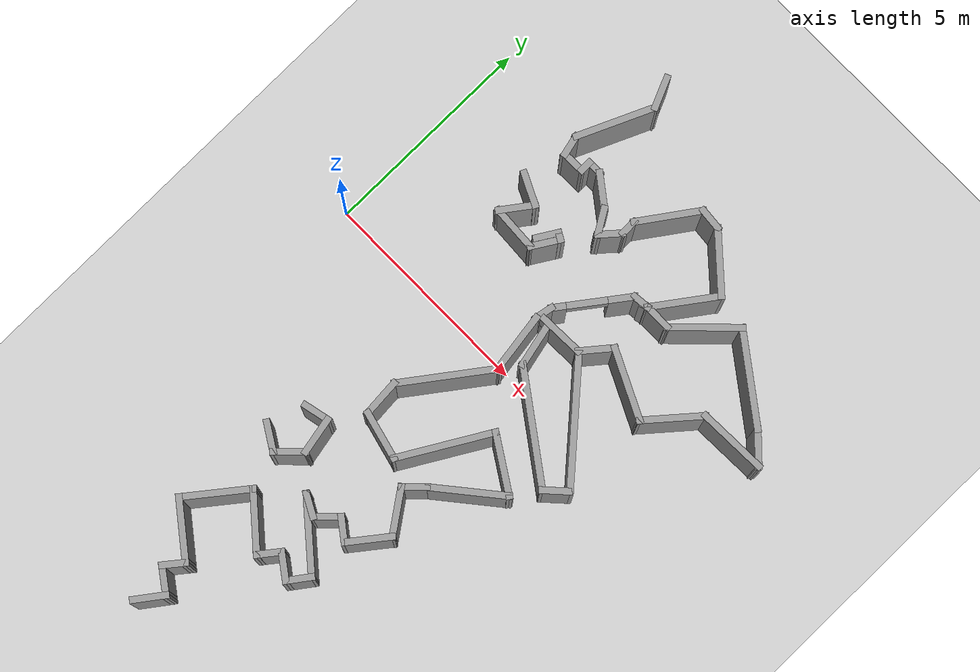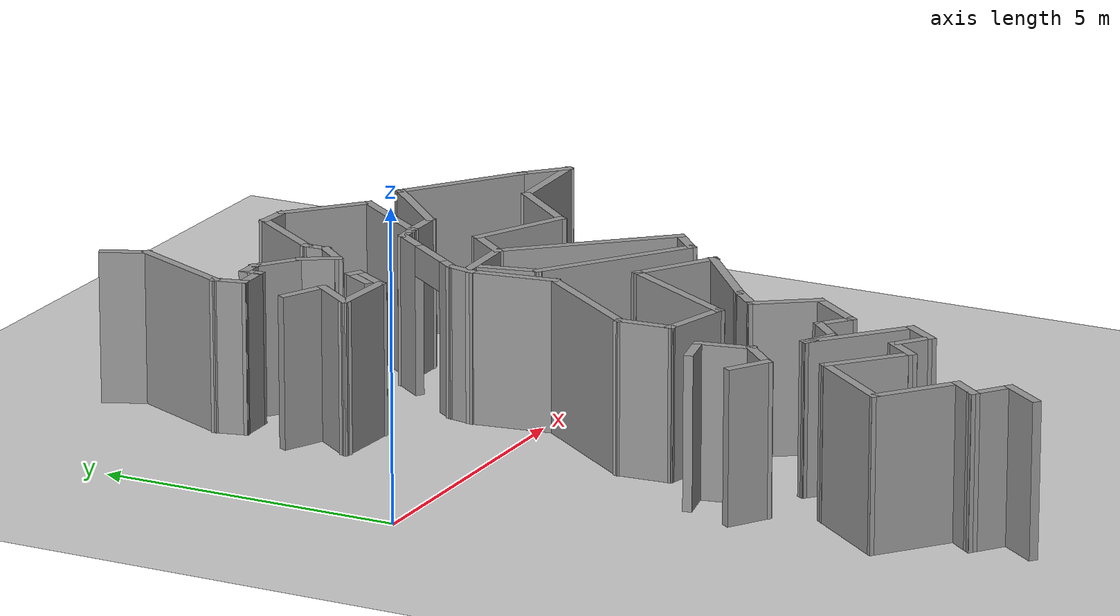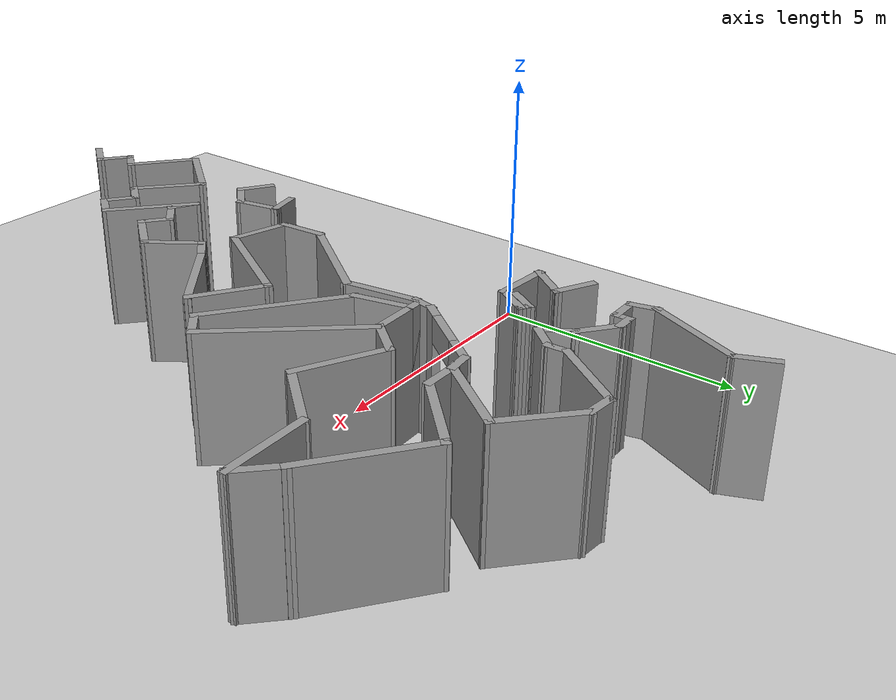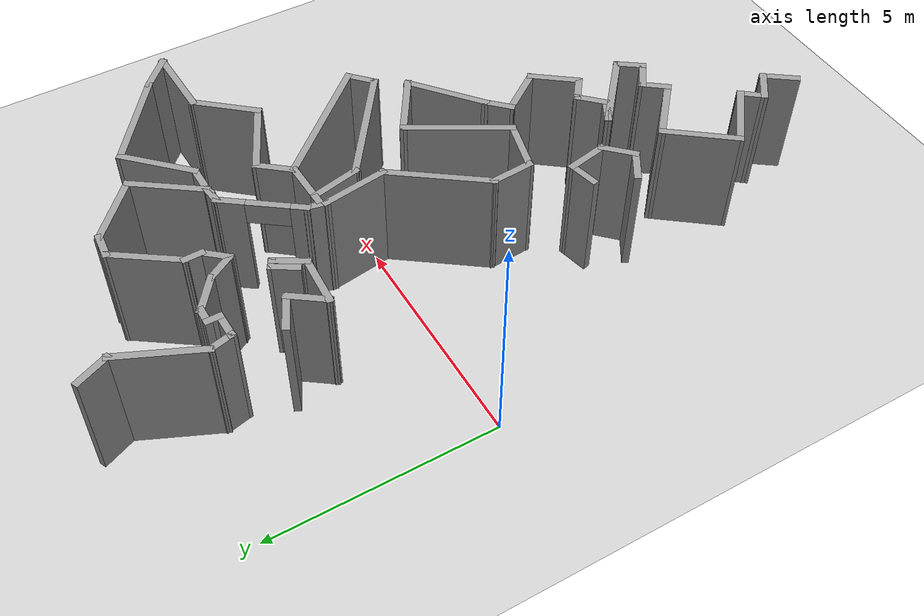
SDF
<sdf version="1.7">
 <world name="default">
  <model name="ground_plane">
   <static>1</static>
   <link name="link">
    <collision name="collision">
     <geometry><plane><normal>0 0 1</normal><size>100 100</size></plane></geometry>
     <surface><friction><ode><mu>100</mu><mu2>50</mu2></ode></friction></surface>
    </collision>
    <visual name="visual">
     <cast_shadows>0</cast_shadows>
     <geometry><plane><normal>0 0 1</normal><size>100 100</size></plane></geometry>
     <material>
      <script><uri>file://media/materials/scripts/gazebo.material</uri><name>Gazebo/Grey</name></script>
     </material>
    </visual>
   </link>
  </model>
  <model name="c82_house_gz">
   <pose>0.081452 -0.44571 0 0 -0 0</pose>
   <link name="Wall_11">
    <collision name="Wall_11_Collision">
     <geometry><box><size>1.18708 0.15 2.5</size></box></geometry>
     <pose>0 0 1.25 0 -0 0</pose>
    </collision>
    <visual name="Wall_11_Visual">
     <pose>0 0 1.25 0 -0 0</pose>
     <geometry><box><size>1.18708 0.15 2.5</size></box></geometry>
     <material>
      <script><uri>file://media/materials/scripts/gazebo.material</uri><name>Gazebo/Grey</name></script>
      <ambient>1 1 1 1</ambient>
     </material>
     <meta><layer>0</layer></meta>
    </visual>
    <pose>2.9473 2.59405 0 0 -0 -0.060532</pose>
   </link>
   <link name="Wall_12">
    <collision name="Wall_12_Collision">
     <geometry><box><size>0.811734 0.15 2.5</size></box></geometry>
     <pose>0 0 1.25 0 -0 0</pose>
    </collision>
    <visual name="Wall_12_Visual">
     <pose>0 0 1.25 0 -0 0</pose>
     <geometry><box><size>0.811734 0.15 2.5</size></box></geometry>
     <material>
      <script><uri>file://media/materials/scripts/gazebo.material</uri><name>Gazebo/Grey</name></script>
      <ambient>1 1 1 1</ambient>
     </material>
     <meta><layer>0</layer></meta>
    </visual>
    <pose>3.63743 2.84501 0 0 -0 1.02225</pose>
   </link>
   <link name="Wall_120">
    <collision name="Wall_120_Collision">
     <geometry><box><size>0.505966 0.15 2.5</size></box></geometry>
     <pose>0 0 1.25 0 -0 0</pose>
    </collision>
    <visual name="Wall_120_Visual">
     <pose>0 0 1.25 0 -0 0</pose>
     <geometry><box><size>0.505966 0.15 2.5</size></box></geometry>
     <material>
      <script><uri>file://media/materials/scripts/gazebo.material</uri><name>Gazebo/Grey</name></script>
      <ambient>1 1 1 1</ambient>
     </material>
     <meta><layer>0</layer></meta>
    </visual>
    <pose>5.9717 3.41398 0 0 -0 0.104884</pose>
   </link>
   <link name="Wall_122">
    <collision name="Wall_122_Collision">
     <geometry><box><size>0.75 0.15 2.5</size></box></geometry>
     <pose>0 0 1.25 0 -0 0</pose>
    </collision>
    <visual name="Wall_122_Visual">
     <pose>0 0 1.25 0 -0 0</pose>
     <geometry><box><size>0.75 0.15 2.5</size></box></geometry>
     <material>
      <script><uri>file://media/materials/scripts/gazebo.material</uri><name>Gazebo/Grey</name></script>
      <ambient>1 1 1 1</ambient>
     </material>
     <meta><layer>0</layer></meta>
    </visual>
    <pose>6.4487 3.43261 0 0 -0 0</pose>
   </link>
   <link name="Wall_123">
    <collision name="Wall_123_Collision">
     <geometry><box><size>1.75 0.15 2.5</size></box></geometry>
     <pose>0 0 1.25 0 -0 0</pose>
    </collision>
    <visual name="Wall_123_Visual">
     <pose>0 0 1.25 0 -0 0</pose>
     <geometry><box><size>1.75 0.15 2.5</size></box></geometry>
     <material>
      <script><uri>file://media/materials/scripts/gazebo.material</uri><name>Gazebo/Grey</name></script>
      <ambient>1 1 1 1</ambient>
     </material>
     <meta><layer>0</layer></meta>
    </visual>
    <pose>7.31439 3.9983 0 0 -0 0.785398</pose>
   </link>
   <link name="Wall_124">
    <collision name="Wall_124_Collision">
     <geometry><box><size>2.34246 0.15 2.5</size></box></geometry>
     <pose>0 0 1.25 0 -0 0</pose>
    </collision>
    <visual name="Wall_124_Visual">
     <pose>0 0 1.25 0 -0 0</pose>
     <geometry><box><size>2.34246 0.15 2.5</size></box></geometry>
     <material>
      <script><uri>file://media/materials/scripts/gazebo.material</uri><name>Gazebo/Grey</name></script>
      <ambient>1 1 1 1</ambient>
     </material>
     <meta><layer>0</layer></meta>
    </visual>
    <pose>8.76248 3.91353 0 0 -0 -0.635221</pose>
   </link>
   <link name="Wall_125">
    <collision name="Wall_125_Collision">
     <geometry><box><size>0.939842 0.15 2.5</size></box></geometry>
     <pose>0 0 1.25 0 -0 0</pose>
    </collision>
    <visual name="Wall_125_Visual">
     <pose>0 0 1.25 0 -0 0</pose>
     <geometry><box><size>0.939842 0.15 2.5</size></box></geometry>
     <material>
      <script><uri>file://media/materials/scripts/gazebo.material</uri><name>Gazebo/Grey</name></script>
      <ambient>1 1 1 1</ambient>
     </material>
     <meta><layer>0</layer></meta>
    </visual>
    <pose>9.93178 2.99168 0 0 -0 -0.757628</pose>
   </link>
   <link name="Wall_126">
    <collision name="Wall_126_Collision">
     <geometry><box><size>1.70149 0.15 2.5</size></box></geometry>
     <pose>0 0 1.25 0 -0 0</pose>
    </collision>
    <visual name="Wall_126_Visual">
     <pose>0 0 1.25 0 -0 0</pose>
     <geometry><box><size>1.70149 0.15 2.5</size></box></geometry>
     <material>
      <script><uri>file://media/materials/scripts/gazebo.material</uri><name>Gazebo/Grey</name></script>
      <ambient>1 1 1 1</ambient>
     </material>
     <meta><layer>0</layer></meta>
    </visual>
    <pose>9.44327 2.69703 0 0 -0 -3.1116</pose>
   </link>
   <link name="Wall_127">
    <collision name="Wall_127_Collision">
     <geometry><box><size>1.5579 0.15 2.5</size></box></geometry>
     <pose>0 0 1.25 0 -0 0</pose>
    </collision>
    <visual name="Wall_127_Visual">
     <pose>0 0 1.25 0 -0 0</pose>
     <geometry><box><size>1.5579 0.15 2.5</size></box></geometry>
     <material>
      <script><uri>file://media/materials/scripts/gazebo.material</uri><name>Gazebo/Grey</name></script>
      <ambient>1 1 1 1</ambient>
     </material>
     <meta><layer>0</layer></meta>
    </visual>
    <pose>8.21039 2.13875 0 0 -0 -2.27823</pose>
   </link>
   <link name="Wall_128">
    <collision name="Wall_128_Collision">
     <geometry><box><size>1.78688 0.15 2.5</size></box></geometry>
     <pose>0 0 1.25 0 -0 0</pose>
    </collision>
    <visual name="Wall_128_Visual">
     <pose>0 0 1.25 0 -0 0</pose>
     <geometry><box><size>1.78688 0.15 2.5</size></box></geometry>
     <material>
      <script><uri>file://media/materials/scripts/gazebo.material</uri><name>Gazebo/Grey</name></script>
      <ambient>1 1 1 1</ambient>
     </material>
     <meta><layer>0</layer></meta>
    </visual>
    <pose>7.01628 1.9604 0 0 -0 2.69066</pose>
   </link>
   <link name="Wall_129">
    <collision name="Wall_129_Collision">
     <geometry><box><size>0.932346 0.15 2.5</size></box></geometry>
     <pose>0 0 1.25 0 -0 0</pose>
    </collision>
    <visual name="Wall_129_Visual">
     <pose>0 0 1.25 0 -0 0</pose>
     <geometry><box><size>0.932346 0.15 2.5</size></box></geometry>
     <material>
      <script><uri>file://media/materials/scripts/gazebo.material</uri><name>Gazebo/Grey</name></script>
      <ambient>1 1 1 1</ambient>
     </material>
     <meta><layer>0</layer></meta>
    </visual>
    <pose>6.03152 2.01468 0 0 -0 -2.25792</pose>
   </link>
   <link name="Wall_130">
    <pose>5.27938 1.69677 0 0 -0 -3.11083</pose>
    <visual name="Wall_130_Visual_0">
     <pose>0 0 1.25 0 -0 0</pose>
     <geometry><box><size>1.1585 0.15 2.5</size></box></geometry>
     <material>
      <script><uri>file://media/materials/scripts/gazebo.material</uri><name>Gazebo/Grey</name></script>
      <ambient>1 1 1 1</ambient>
     </material>
     <meta><layer>0</layer></meta>
    </visual>
    <collision name="Wall_130_Collision_0">
     <geometry><box><size>1.1585 0.15 2.5</size></box></geometry>
     <pose>0 0 1.25 0 -0 0</pose>
    </collision>
    <visual name="Wall_130_Visual_1">
     <pose>0.446838 0 1.25 0 -0 0</pose>
     <geometry><box><size>0.264818 0.15 2.5</size></box></geometry>
     <material>
      <script><uri>file://media/materials/scripts/gazebo.material</uri><name>Gazebo/Grey</name></script>
      <ambient>1 1 1 1</ambient>
     </material>
     <meta><layer>0</layer></meta>
    </visual>
    <collision name="Wall_130_Collision_1">
     <geometry><box><size>0.264818 0.15 2.5</size></box></geometry>
     <pose>0.446838 0 1.25 0 -0 0</pose>
    </collision>
   </link>
   <link name="Wall_139">
    <collision name="Wall_139_Collision">
     <geometry><box><size>1.17812 0.15 2.5</size></box></geometry>
     <pose>0 0 1.25 0 -0 0</pose>
    </collision>
    <visual name="Wall_139_Visual">
     <pose>0 0 1.25 0 -0 0</pose>
     <geometry><box><size>1.17812 0.15 2.5</size></box></geometry>
     <material>
      <script><uri>file://media/materials/scripts/gazebo.material</uri><name>Gazebo/Grey</name></script>
      <ambient>1 1 1 1</ambient>
     </material>
     <meta><layer>0</layer></meta>
    </visual>
    <pose>5.0439 1.17068 0 0 -0 -1.34464</pose>
   </link>
   <link name="Wall_14">
    <collision name="Wall_14_Collision">
     <geometry><box><size>0.301971 0.15 2.5</size></box></geometry>
     <pose>0 0 1.25 0 -0 0</pose>
    </collision>
    <visual name="Wall_14_Visual">
     <pose>0 0 1.25 0 -0 0</pose>
     <geometry><box><size>0.301971 0.15 2.5</size></box></geometry>
     <material>
      <script><uri>file://media/materials/scripts/gazebo.material</uri><name>Gazebo/Grey</name></script>
      <ambient>1 1 1 1</ambient>
     </material>
     <meta><layer>0</layer></meta>
    </visual>
    <pose>3.74405 3.16515 0 0 -0 2.62064</pose>
   </link>
   <link name="Wall_140">
    <collision name="Wall_140_Collision">
     <geometry><box><size>2.8619 0.15 2.5</size></box></geometry>
     <pose>0 0 1.25 0 -0 0</pose>
    </collision>
    <visual name="Wall_140_Visual">
     <pose>0 0 1.25 0 -0 0</pose>
     <geometry><box><size>2.8619 0.15 2.5</size></box></geometry>
     <material>
      <script><uri>file://media/materials/scripts/gazebo.material</uri><name>Gazebo/Grey</name></script>
      <ambient>1 1 1 1</ambient>
     </material>
     <meta><layer>0</layer></meta>
    </visual>
    <pose>6.25864 -0.123861 0 0 -0 -0.62519</pose>
   </link>
   <link name="Wall_141">
    <collision name="Wall_141_Collision">
     <geometry><box><size>0.739888 0.15 2.5</size></box></geometry>
     <pose>0 0 1.25 0 -0 0</pose>
    </collision>
    <visual name="Wall_141_Visual">
     <pose>0 0 1.25 0 -0 0</pose>
     <geometry><box><size>0.739888 0.15 2.5</size></box></geometry>
     <material>
      <script><uri>file://media/materials/scripts/gazebo.material</uri><name>Gazebo/Grey</name></script>
      <ambient>1 1 1 1</ambient>
     </material>
     <meta><layer>0</layer></meta>
    </visual>
    <pose>7.57535 -0.717932 0 0 -0 0.742871</pose>
   </link>
   <link name="Wall_142">
    <collision name="Wall_142_Collision">
     <geometry><box><size>3.10789 0.15 2.5</size></box></geometry>
     <pose>0 0 1.25 0 -0 0</pose>
    </collision>
    <visual name="Wall_142_Visual">
     <pose>0 0 1.25 0 -0 0</pose>
     <geometry><box><size>3.10789 0.15 2.5</size></box></geometry>
     <material>
      <script><uri>file://media/materials/scripts/gazebo.material</uri><name>Gazebo/Grey</name></script>
      <ambient>1 1 1 1</ambient>
     </material>
     <meta><layer>0</layer></meta>
    </visual>
    <pose>6.80838 0.585478 0 0 -0 2.29893</pose>
   </link>
   <link name="Wall_15">
    <collision name="Wall_15_Collision">
     <geometry><box><size>0.642437 0.15 2.5</size></box></geometry>
     <pose>0 0 1.25 0 -0 0</pose>
    </collision>
    <visual name="Wall_15_Visual">
     <pose>0 0 1.25 0 -0 0</pose>
     <geometry><box><size>0.642437 0.15 2.5</size></box></geometry>
     <material>
      <script><uri>file://media/materials/scripts/gazebo.material</uri><name>Gazebo/Grey</name></script>
      <ambient>1 1 1 1</ambient>
     </material>
     <meta><layer>0</layer></meta>
    </visual>
    <pose>3.54996 2.99274 0 0 -0 -2.11836</pose>
   </link>
   <link name="Wall_17">
    <collision name="Wall_17_Collision">
     <geometry><box><size>0.942747 0.15 2.5</size></box></geometry>
     <pose>0 0 1.25 0 -0 0</pose>
    </collision>
    <visual name="Wall_17_Visual">
     <pose>0 0 1.25 0 -0 0</pose>
     <geometry><box><size>0.942747 0.15 2.5</size></box></geometry>
     <material>
      <script><uri>file://media/materials/scripts/gazebo.material</uri><name>Gazebo/Grey</name></script>
      <ambient>1 1 1 1</ambient>
     </material>
     <meta><layer>0</layer></meta>
    </visual>
    <pose>2.66425 2.94496 0 0 -0 0.937612</pose>
   </link>
   <link name="Wall_18">
    <collision name="Wall_18_Collision">
     <geometry><box><size>0.879234 0.15 2.5</size></box></geometry>
     <pose>0 0 1.25 0 -0 0</pose>
    </collision>
    <visual name="Wall_18_Visual">
     <pose>0 0 1.25 0 -0 0</pose>
     <geometry><box><size>0.879234 0.15 2.5</size></box></geometry>
     <material>
      <script><uri>file://media/materials/scripts/gazebo.material</uri><name>Gazebo/Grey</name></script>
      <ambient>1 1 1 1</ambient>
     </material>
     <meta><layer>0</layer></meta>
    </visual>
    <pose>2.57064 3.42344 0 0 -0 2.69052</pose>
   </link>
   <link name="Wall_34">
    <collision name="Wall_34_Collision">
     <geometry><box><size>0.840829 0.15 2.5</size></box></geometry>
     <pose>0 0 1.25 0 -0 0</pose>
    </collision>
    <visual name="Wall_34_Visual">
     <pose>0 0 1.25 0 -0 0</pose>
     <geometry><box><size>0.840829 0.15 2.5</size></box></geometry>
     <material>
      <script><uri>file://media/materials/scripts/gazebo.material</uri><name>Gazebo/Grey</name></script>
      <ambient>1 1 1 1</ambient>
     </material>
     <meta><layer>0</layer></meta>
    </visual>
    <pose>3.05893 6.90582 0 0 -0 -1.15912</pose>
   </link>
   <link name="Wall_35">
    <collision name="Wall_35_Collision">
     <geometry><box><size>1.95808 0.15 2.5</size></box></geometry>
     <pose>0 0 1.25 0 -0 0</pose>
    </collision>
    <visual name="Wall_35_Visual">
     <pose>0 0 1.25 0 -0 0</pose>
     <geometry><box><size>1.95808 0.15 2.5</size></box></geometry>
     <material>
      <script><uri>file://media/materials/scripts/gazebo.material</uri><name>Gazebo/Grey</name></script>
      <ambient>1 1 1 1</ambient>
     </material>
     <meta><layer>0</layer></meta>
    </visual>
    <pose>2.82709 5.76443 0 0 -0 -1.99253</pose>
   </link>
   <link name="Wall_36">
    <collision name="Wall_36_Collision">
     <geometry><box><size>0.608515 0.15 2.5</size></box></geometry>
     <pose>0 0 1.25 0 -0 0</pose>
    </collision>
    <visual name="Wall_36_Visual">
     <pose>0 0 1.25 0 -0 0</pose>
     <geometry><box><size>0.608515 0.15 2.5</size></box></geometry>
     <material>
      <script><uri>file://media/materials/scripts/gazebo.material</uri><name>Gazebo/Grey</name></script>
      <ambient>1 1 1 1</ambient>
     </material>
     <meta><layer>0</layer></meta>
    </visual>
    <pose>2.51053 4.71667 0 0 -0 -1.33525</pose>
   </link>
   <link name="Wall_37">
    <collision name="Wall_37_Collision">
     <geometry><box><size>0.649436 0.15 2.5</size></box></geometry>
     <pose>0 0 1.25 0 -0 0</pose>
    </collision>
    <visual name="Wall_37_Visual">
     <pose>0 0 1.25 0 -0 0</pose>
     <geometry><box><size>0.649436 0.15 2.5</size></box></geometry>
     <material>
      <script><uri>file://media/materials/scripts/gazebo.material</uri><name>Gazebo/Grey</name></script>
      <ambient>1 1 1 1</ambient>
     </material>
     <meta><layer>0</layer></meta>
    </visual>
    <pose>2.81371 4.4982 0 0 -0 0.017855</pose>
   </link>
   <link name="Wall_38">
    <collision name="Wall_38_Collision">
     <geometry><box><size>0.390926 0.15 2.5</size></box></geometry>
     <pose>0 0 1.25 0 -0 0</pose>
    </collision>
    <visual name="Wall_38_Visual">
     <pose>0 0 1.25 0 -0 0</pose>
     <geometry><box><size>0.390926 0.15 2.5</size></box></geometry>
     <material>
      <script><uri>file://media/materials/scripts/gazebo.material</uri><name>Gazebo/Grey</name></script>
      <ambient>1 1 1 1</ambient>
     </material>
     <meta><layer>0</layer></meta>
    </visual>
    <pose>3.06339 4.62304 0 0 -0 1.5708</pose>
   </link>
   <link name="Wall_39">
    <collision name="Wall_39_Collision">
     <geometry><box><size>0.453705 0.15 2.5</size></box></geometry>
     <pose>0 0 1.25 0 -0 0</pose>
    </collision>
    <visual name="Wall_39_Visual">
     <pose>0 0 1.25 0 -0 0</pose>
     <geometry><box><size>0.453705 0.15 2.5</size></box></geometry>
     <material>
      <script><uri>file://media/materials/scripts/gazebo.material</uri><name>Gazebo/Grey</name></script>
      <ambient>1 1 1 1</ambient>
     </material>
     <meta><layer>0</layer></meta>
    </visual>
    <pose>3.21498 4.74342 0 0 -0 0</pose>
   </link>
   <link name="Wall_40">
    <collision name="Wall_40_Collision">
     <geometry><box><size>0.932928 0.15 2.5</size></box></geometry>
     <pose>0 0 1.25 0 -0 0</pose>
    </collision>
    <visual name="Wall_40_Visual">
     <pose>0 0 1.25 0 -0 0</pose>
     <geometry><box><size>0.932928 0.15 2.5</size></box></geometry>
     <material>
      <script><uri>file://media/materials/scripts/gazebo.material</uri><name>Gazebo/Grey</name></script>
      <ambient>1 1 1 1</ambient>
     </material>
     <meta><layer>0</layer></meta>
    </visual>
    <pose>3.67867 4.50712 0 0 -0 -0.648057</pose>
   </link>
   <link name="Wall_41">
    <collision name="Wall_41_Collision">
     <geometry><box><size>0.734188 0.15 2.5</size></box></geometry>
     <pose>0 0 1.25 0 -0 0</pose>
    </collision>
    <visual name="Wall_41_Visual">
     <pose>0 0 1.25 0 -0 0</pose>
     <geometry><box><size>0.734188 0.15 2.5</size></box></geometry>
     <material>
      <script><uri>file://media/materials/scripts/gazebo.material</uri><name>Gazebo/Grey</name></script>
      <ambient>1 1 1 1</ambient>
     </material>
     <meta><layer>0</layer></meta>
    </visual>
    <pose>4.14236 4.02114 0 0 -0 -1.02514</pose>
   </link>
   <link name="Wall_42">
    <collision name="Wall_42_Collision">
     <geometry><box><size>0.693577 0.15 2.5</size></box></geometry>
     <pose>0 0 1.25 0 -0 0</pose>
    </collision>
    <visual name="Wall_42_Visual">
     <pose>0 0 1.25 0 -0 0</pose>
     <geometry><box><size>0.693577 0.15 2.5</size></box></geometry>
     <material>
      <script><uri>file://media/materials/scripts/gazebo.material</uri><name>Gazebo/Grey</name></script>
      <ambient>1 1 1 1</ambient>
     </material>
     <meta><layer>0</layer></meta>
    </visual>
    <pose>4.47229 3.97655 0 0 -0 0.855053</pose>
   </link>
   <link name="Wall_43">
    <collision name="Wall_43_Collision">
     <geometry><box><size>0.489318 0.15 2.5</size></box></geometry>
     <pose>0 0 1.25 0 -0 0</pose>
    </collision>
    <visual name="Wall_43_Visual">
     <pose>0 0 1.25 0 -0 0</pose>
     <geometry><box><size>0.489318 0.15 2.5</size></box></geometry>
     <material>
      <script><uri>file://media/materials/scripts/gazebo.material</uri><name>Gazebo/Grey</name></script>
      <ambient>1 1 1 1</ambient>
     </material>
     <meta><layer>0</layer></meta>
    </visual>
    <pose>4.64617 4.35107 0 0 -0 1.59711</pose>
   </link>
   <link name="Wall_44">
    <collision name="Wall_44_Collision">
     <geometry><box><size>1.65413 0.15 2.5</size></box></geometry>
     <pose>0 0 1.25 0 -0 0</pose>
    </collision>
    <visual name="Wall_44_Visual">
     <pose>0 0 1.25 0 -0 0</pose>
     <geometry><box><size>1.65413 0.15 2.5</size></box></geometry>
     <material>
      <script><uri>file://media/materials/scripts/gazebo.material</uri><name>Gazebo/Grey</name></script>
      <ambient>1 1 1 1</ambient>
     </material>
     <meta><layer>0</layer></meta>
    </visual>
    <pose>5.07419 5.13578 0 0 -0 0.958128</pose>
   </link>
   <link name="Wall_45">
    <collision name="Wall_45_Collision">
     <geometry><box><size>0.633582 0.15 2.5</size></box></geometry>
     <pose>0 0 1.25 0 -0 0</pose>
    </collision>
    <visual name="Wall_45_Visual">
     <pose>0 0 1.25 0 -0 0</pose>
     <geometry><box><size>0.633582 0.15 2.5</size></box></geometry>
     <material>
      <script><uri>file://media/materials/scripts/gazebo.material</uri><name>Gazebo/Grey</name></script>
      <ambient>1 1 1 1</ambient>
     </material>
     <meta><layer>0</layer></meta>
    </visual>
    <pose>5.74743 5.72876 0 0 -0 -0.092329</pose>
   </link>
   <link name="Wall_46">
    <collision name="Wall_46_Collision">
     <geometry><box><size>1.62143 0.15 2.5</size></box></geometry>
     <pose>0 0 1.25 0 -0 0</pose>
    </collision>
    <visual name="Wall_46_Visual">
     <pose>0 0 1.25 0 -0 0</pose>
     <geometry><box><size>1.62143 0.15 2.5</size></box></geometry>
     <material>
      <script><uri>file://media/materials/scripts/gazebo.material</uri><name>Gazebo/Grey</name></script>
      <ambient>1 1 1 1</ambient>
     </material>
     <meta><layer>0</layer></meta>
    </visual>
    <pose>6.5366 5.21603 0 0 -0 -0.729662</pose>
   </link>
   <link name="Wall_47">
    <collision name="Wall_47_Collision">
     <geometry><box><size>1.74638 0.15 2.5</size></box></geometry>
     <pose>0 0 1.25 0 -0 0</pose>
    </collision>
    <visual name="Wall_47_Visual">
     <pose>0 0 1.25 0 -0 0</pose>
     <geometry><box><size>1.74638 0.15 2.5</size></box></geometry>
     <material>
      <script><uri>file://media/materials/scripts/gazebo.material</uri><name>Gazebo/Grey</name></script>
      <ambient>1 1 1 1</ambient>
     </material>
     <meta><layer>0</layer></meta>
    </visual>
    <pose>6.61685 4.0791 0 0 -0 -2.19754</pose>
   </link>
   <link name="Wall_49">
    <collision name="Wall_49_Collision">
     <geometry><box><size>0.25 0.15 2.5</size></box></geometry>
     <pose>0 0 1.25 0 -0 0</pose>
    </collision>
    <visual name="Wall_49_Visual">
     <pose>0 0 1.25 0 -0 0</pose>
     <geometry><box><size>0.25 0.15 2.5</size></box></geometry>
     <material>
      <script><uri>file://media/materials/scripts/gazebo.material</uri><name>Gazebo/Grey</name></script>
      <ambient>1 1 1 1</ambient>
     </material>
     <meta><layer>0</layer></meta>
    </visual>
    <pose>6.10041 3.41967 0 0 -0 -2.87979</pose>
   </link>
   <link name="Wall_51">
    <pose>5.25812 2.67598 0 0 -0 -2.21167</pose>
    <visual name="Wall_51_Visual_0">
     <pose>-0.647684 0 1.25 0 -0 0</pose>
     <geometry><box><size>0.64951 0.15 2.5</size></box></geometry>
     <material>
      <script><uri>file://media/materials/scripts/gazebo.material</uri><name>Gazebo/Grey</name></script>
      <ambient>1 1 1 1</ambient>
     </material>
     <meta><layer>0</layer></meta>
    </visual>
    <collision name="Wall_51_Collision_0">
     <geometry><box><size>0.64951 0.15 2.5</size></box></geometry>
     <pose>-0.647684 0 1.25 0 -0 0</pose>
    </collision>
    <visual name="Wall_51_Visual_1">
     <pose>0.774755 0 1.25 0 -0 0</pose>
     <geometry><box><size>0.395367 0.15 2.5</size></box></geometry>
     <material>
      <script><uri>file://media/materials/scripts/gazebo.material</uri><name>Gazebo/Grey</name></script>
      <ambient>1 1 1 1</ambient>
     </material>
     <meta><layer>0</layer></meta>
    </visual>
    <collision name="Wall_51_Collision_1">
     <geometry><box><size>0.395367 0.15 2.5</size></box></geometry>
     <pose>0.774755 0 1.25 0 -0 0</pose>
    </collision>
    <visual name="Wall_51_Visual_2">
     <pose>0.127071 0 2.25 0 -0 0</pose>
     <geometry><box><size>0.9 0.15 0.5</size></box></geometry>
     <material>
      <script><uri>file://media/materials/scripts/gazebo.material</uri><name>Gazebo/Grey</name></script>
      <ambient>1 1 1 1</ambient>
     </material>
     <meta><layer>0</layer></meta>
    </visual>
    <collision name="Wall_51_Collision_2">
     <geometry><box><size>0.9 0.15 0.5</size></box></geometry>
     <pose>0.127071 0 2.25 0 -0 0</pose>
    </collision>
   </link>
   <link name="Wall_52">
    <collision name="Wall_52_Collision">
     <geometry><box><size>0.534096 0.15 2.5</size></box></geometry>
     <pose>0 0 1.25 0 -0 0</pose>
    </collision>
    <visual name="Wall_52_Visual">
     <pose>0 0 1.25 0 -0 0</pose>
     <geometry><box><size>0.534096 0.15 2.5</size></box></geometry>
     <material>
      <script><uri>file://media/materials/scripts/gazebo.material</uri><name>Gazebo/Grey</name></script>
      <ambient>1 1 1 1</ambient>
     </material>
     <meta><layer>0</layer></meta>
    </visual>
    <pose>4.68466 1.76815 0 0 -0 -1.76403</pose>
   </link>
   <link name="Wall_53">
    <collision name="Wall_53_Collision">
     <geometry><box><size>1.52192 0.15 2.5</size></box></geometry>
     <pose>0 0 1.25 0 -0 0</pose>
    </collision>
    <visual name="Wall_53_Visual">
     <pose>0 0 1.25 0 -0 0</pose>
     <geometry><box><size>1.52192 0.15 2.5</size></box></geometry>
     <material>
      <script><uri>file://media/materials/scripts/gazebo.material</uri><name>Gazebo/Grey</name></script>
      <ambient>1 1 1 1</ambient>
     </material>
     <meta><layer>0</layer></meta>
    </visual>
    <pose>4.74916 0.901244 0 0 -0 -1.42247</pose>
   </link>
   <link name="Wall_54">
    <collision name="Wall_54_Collision">
     <geometry><box><size>2.38029 0.15 2.5</size></box></geometry>
     <pose>0 0 1.25 0 -0 0</pose>
    </collision>
    <visual name="Wall_54_Visual">
     <pose>0 0 1.25 0 -0 0</pose>
     <geometry><box><size>2.38029 0.15 2.5</size></box></geometry>
     <material>
      <script><uri>file://media/materials/scripts/gazebo.material</uri><name>Gazebo/Grey</name></script>
      <ambient>1 1 1 1</ambient>
     </material>
     <meta><layer>0</layer></meta>
    </visual>
    <pose>4.1877 -0.673955 0 0 -0 -2.2073</pose>
   </link>
   <link name="Wall_55">
    <collision name="Wall_55_Collision">
     <geometry><box><size>0.994493 0.15 2.5</size></box></geometry>
     <pose>0 0 1.25 0 -0 0</pose>
    </collision>
    <visual name="Wall_55_Visual">
     <pose>0 0 1.25 0 -0 0</pose>
     <geometry><box><size>0.994493 0.15 2.5</size></box></geometry>
     <material>
      <script><uri>file://media/materials/scripts/gazebo.material</uri><name>Gazebo/Grey</name></script>
      <ambient>1 1 1 1</ambient>
     </material>
     <meta><layer>0</layer></meta>
    </visual>
    <pose>3.55606 -1.99182 0 0 -0 -1.49686</pose>
   </link>
   <link name="Wall_56">
    <collision name="Wall_56_Collision">
     <geometry><box><size>1.26214 0.15 2.5</size></box></geometry>
     <pose>0 0 1.25 0 -0 0</pose>
    </collision>
    <visual name="Wall_56_Visual">
     <pose>0 0 1.25 0 -0 0</pose>
     <geometry><box><size>1.26214 0.15 2.5</size></box></geometry>
     <material>
      <script><uri>file://media/materials/scripts/gazebo.material</uri><name>Gazebo/Grey</name></script>
      <ambient>1 1 1 1</ambient>
     </material>
     <meta><layer>0</layer></meta>
    </visual>
    <pose>4.12532 -2.55328 0 0 -0 -0.255182</pose>
   </link>
   <link name="Wall_57">
    <collision name="Wall_57_Collision">
     <geometry><box><size>2.38628 0.15 2.5</size></box></geometry>
     <pose>0 0 1.25 0 -0 0</pose>
    </collision>
    <visual name="Wall_57_Visual">
     <pose>0 0 1.25 0 -0 0</pose>
     <geometry><box><size>2.38628 0.15 2.5</size></box></geometry>
     <material>
      <script><uri>file://media/materials/scripts/gazebo.material</uri><name>Gazebo/Grey</name></script>
      <ambient>1 1 1 1</ambient>
     </material>
     <meta><layer>0</layer></meta>
    </visual>
    <pose>5.22484 -1.72669 0 0 -0 1.04473</pose>
   </link>
   <link name="Wall_58">
    <collision name="Wall_58_Collision">
     <geometry><box><size>1.53875 0.15 2.5</size></box></geometry>
     <pose>0 0 1.25 0 -0 0</pose>
    </collision>
    <visual name="Wall_58_Visual">
     <pose>0 0 1.25 0 -0 0</pose>
     <geometry><box><size>1.53875 0.15 2.5</size></box></geometry>
     <material>
      <script><uri>file://media/materials/scripts/gazebo.material</uri><name>Gazebo/Grey</name></script>
      <ambient>1 1 1 1</ambient>
     </material>
     <meta><layer>0</layer></meta>
    </visual>
    <pose>6.37115 -1.13404 0 0 -0 -0.569313</pose>
   </link>
   <link name="Wall_59">
    <collision name="Wall_59_Collision">
     <geometry><box><size>1.90135 0.15 2.5</size></box></geometry>
     <pose>0 0 1.25 0 -0 0</pose>
    </collision>
    <visual name="Wall_59_Visual">
     <pose>0 0 1.25 0 -0 0</pose>
     <geometry><box><size>1.90135 0.15 2.5</size></box></geometry>
     <material>
      <script><uri>file://media/materials/scripts/gazebo.material</uri><name>Gazebo/Grey</name></script>
      <ambient>1 1 1 1</ambient>
     </material>
     <meta><layer>0</layer></meta>
    </visual>
    <pose>6.27757 -2.062 0 0 -0 -2.45712</pose>
   </link>
   <link name="Wall_60">
    <collision name="Wall_60_Collision">
     <geometry><box><size>0.701403 0.15 2.5</size></box></geometry>
     <pose>0 0 1.25 0 -0 0</pose>
    </collision>
    <visual name="Wall_60_Visual">
     <pose>0 0 1.25 0 -0 0</pose>
     <geometry><box><size>0.701403 0.15 2.5</size></box></geometry>
     <material>
      <script><uri>file://media/materials/scripts/gazebo.material</uri><name>Gazebo/Grey</name></script>
      <ambient>1 1 1 1</ambient>
     </material>
     <meta><layer>0</layer></meta>
    </visual>
    <pose>5.40419 -2.81061 0 0 -0 -2.35619</pose>
   </link>
   <link name="Wall_61">
    <collision name="Wall_61_Collision">
     <geometry><box><size>1.2233 0.15 2.5</size></box></geometry>
     <pose>0 0 1.25 0 -0 0</pose>
    </collision>
    <visual name="Wall_61_Visual">
     <pose>0 0 1.25 0 -0 0</pose>
     <geometry><box><size>1.2233 0.15 2.5</size></box></geometry>
     <material>
      <script><uri>file://media/materials/scripts/gazebo.material</uri><name>Gazebo/Grey</name></script>
      <ambient>1 1 1 1</ambient>
     </material>
     <meta><layer>0</layer></meta>
    </visual>
    <pose>5.52116 -3.44225 0 0 -0 -0.950547</pose>
   </link>
   <link name="Wall_62">
    <collision name="Wall_62_Collision">
     <geometry><box><size>1.17528 0.15 2.5</size></box></geometry>
     <pose>0 0 1.25 0 -0 0</pose>
    </collision>
    <visual name="Wall_62_Visual">
     <pose>0 0 1.25 0 -0 0</pose>
     <geometry><box><size>1.17528 0.15 2.5</size></box></geometry>
     <material>
      <script><uri>file://media/materials/scripts/gazebo.material</uri><name>Gazebo/Grey</name></script>
      <ambient>1 1 1 1</ambient>
     </material>
     <meta><layer>0</layer></meta>
    </visual>
    <pose>5.51999 -4.28486 0 0 -0 -2.22782</pose>
   </link>
   <link name="Wall_63">
    <collision name="Wall_63_Collision">
     <geometry><box><size>0.694536 0.15 2.5</size></box></geometry>
     <pose>0 0 1.25 0 -0 0</pose>
    </collision>
    <visual name="Wall_63_Visual">
     <pose>0 0 1.25 0 -0 0</pose>
     <geometry><box><size>0.694536 0.15 2.5</size></box></geometry>
     <material>
      <script><uri>file://media/materials/scripts/gazebo.material</uri><name>Gazebo/Grey</name></script>
      <ambient>1 1 1 1</ambient>
     </material>
     <meta><layer>0</layer></meta>
    </visual>
    <pose>4.99032 -4.52576 0 0 -0 2.49052</pose>
   </link>
   <link name="Wall_64">
    <collision name="Wall_64_Collision">
     <geometry><box><size>0.75 0.15 2.5</size></box></geometry>
     <pose>0 0 1.25 0 -0 0</pose>
    </collision>
    <visual name="Wall_64_Visual">
     <pose>0 0 1.25 0 -0 0</pose>
     <geometry><box><size>0.75 0.15 2.5</size></box></geometry>
     <material>
      <script><uri>file://media/materials/scripts/gazebo.material</uri><name>Gazebo/Grey</name></script>
      <ambient>1 1 1 1</ambient>
     </material>
     <meta><layer>0</layer></meta>
    </visual>
    <pose>4.56161 -4.57289 0 0 -0 -2.35619</pose>
   </link>
   <link name="Wall_65">
    <collision name="Wall_65_Collision">
     <geometry><box><size>0.655841 0.15 2.5</size></box></geometry>
     <pose>0 0 1.25 0 -0 0</pose>
    </collision>
    <visual name="Wall_65_Visual">
     <pose>0 0 1.25 0 -0 0</pose>
     <geometry><box><size>0.655841 0.15 2.5</size></box></geometry>
     <material>
      <script><uri>file://media/materials/scripts/gazebo.material</uri><name>Gazebo/Grey</name></script>
      <ambient>1 1 1 1</ambient>
     </material>
     <meta><layer>0</layer></meta>
    </visual>
    <pose>4.12644 -4.66577 0 0 -0 2.65059</pose>
   </link>
   <link name="Wall_66">
    <collision name="Wall_66_Collision">
     <geometry><box><size>1.91959 0.15 2.5</size></box></geometry>
     <pose>0 0 1.25 0 -0 0</pose>
    </collision>
    <visual name="Wall_66_Visual">
     <pose>0 0 1.25 0 -0 0</pose>
     <geometry><box><size>1.91959 0.15 2.5</size></box></geometry>
     <material>
      <script><uri>file://media/materials/scripts/gazebo.material</uri><name>Gazebo/Grey</name></script>
      <ambient>1 1 1 1</ambient>
     </material>
     <meta><layer>0</layer></meta>
    </visual>
    <pose>4.57471 -5.12289 0 0 -0 -0.709458</pose>
   </link>
   <link name="Wall_67">
    <collision name="Wall_67_Collision">
     <geometry><box><size>0.70338 0.15 2.5</size></box></geometry>
     <pose>0 0 1.25 0 -0 0</pose>
    </collision>
    <visual name="Wall_67_Visual">
     <pose>0 0 1.25 0 -0 0</pose>
     <geometry><box><size>0.70338 0.15 2.5</size></box></geometry>
     <material>
      <script><uri>file://media/materials/scripts/gazebo.material</uri><name>Gazebo/Grey</name></script>
      <ambient>1 1 1 1</ambient>
     </material>
     <meta><layer>0</layer></meta>
    </visual>
    <pose>5.08328 -5.92303 0 0 -0 -2.19959</pose>
   </link>
   <link name="Wall_68">
    <collision name="Wall_68_Collision">
     <geometry><box><size>0.771182 0.15 2.5</size></box></geometry>
     <pose>0 0 1.25 0 -0 0</pose>
    </collision>
    <visual name="Wall_68_Visual">
     <pose>0 0 1.25 0 -0 0</pose>
     <geometry><box><size>0.771182 0.15 2.5</size></box></geometry>
     <material>
      <script><uri>file://media/materials/scripts/gazebo.material</uri><name>Gazebo/Grey</name></script>
      <ambient>1 1 1 1</ambient>
     </material>
     <meta><layer>0</layer></meta>
    </visual>
    <pose>4.66964 -5.96372 0 0 -0 2.51119</pose>
   </link>
   <link name="Wall_69">
    <collision name="Wall_69_Collision">
     <geometry><box><size>0.681684 0.15 2.5</size></box></geometry>
     <pose>0 0 1.25 0 -0 0</pose>
    </collision>
    <visual name="Wall_69_Visual">
     <pose>0 0 1.25 0 -0 0</pose>
     <geometry><box><size>0.681684 0.15 2.5</size></box></geometry>
     <material>
      <script><uri>file://media/materials/scripts/gazebo.material</uri><name>Gazebo/Grey</name></script>
      <ambient>1 1 1 1</ambient>
     </material>
     <meta><layer>0</layer></meta>
    </visual>
    <pose>4.25601 -5.99084 0 0 -0 -2.2296</pose>
   </link>
   <link name="Wall_70">
    <collision name="Wall_70_Collision">
     <geometry><box><size>1.55337 0.15 2.5</size></box></geometry>
     <pose>0 0 1.25 0 -0 0</pose>
    </collision>
    <visual name="Wall_70_Visual">
     <pose>0 0 1.25 0 -0 0</pose>
     <geometry><box><size>1.55337 0.15 2.5</size></box></geometry>
     <material>
      <script><uri>file://media/materials/scripts/gazebo.material</uri><name>Gazebo/Grey</name></script>
      <ambient>1 1 1 1</ambient>
     </material>
     <meta><layer>0</layer></meta>
    </visual>
    <pose>3.56436 -5.73995 0 0 -0 2.42458</pose>
   </link>
   <link name="Wall_71">
    <collision name="Wall_71_Collision">
     <geometry><box><size>1.73435 0.15 2.5</size></box></geometry>
     <pose>0 0 1.25 0 -0 0</pose>
    </collision>
    <visual name="Wall_71_Visual">
     <pose>0 0 1.25 0 -0 0</pose>
     <geometry><box><size>1.73435 0.15 2.5</size></box></geometry>
     <material>
      <script><uri>file://media/materials/scripts/gazebo.material</uri><name>Gazebo/Grey</name></script>
      <ambient>1 1 1 1</ambient>
     </material>
     <meta><layer>0</layer></meta>
    </visual>
    <pose>2.54722 -5.90269 0 0 -0 -2.23484</pose>
   </link>
   <link name="Wall_72">
    <collision name="Wall_72_Collision">
     <geometry><box><size>1.55002 0.15 2.5</size></box></geometry>
     <pose>0 0 1.25 0 -0 0</pose>
    </collision>
    <visual name="Wall_72_Visual">
     <pose>0 0 1.25 0 -0 0</pose>
     <geometry><box><size>1.55002 0.15 2.5</size></box></geometry>
     <material>
      <script><uri>file://media/materials/scripts/gazebo.material</uri><name>Gazebo/Grey</name></script>
      <ambient>1 1 1 1</ambient>
     </material>
     <meta><layer>0</layer></meta>
    </visual>
    <pose>2.60825 -6.96051 0 0 -0 -0.66869</pose>
   </link>
   <link name="Wall_73">
    <collision name="Wall_73_Collision">
     <geometry><box><size>0.651969 0.15 2.5</size></box></geometry>
     <pose>0 0 1.25 0 -0 0</pose>
    </collision>
    <visual name="Wall_73_Visual">
     <pose>0 0 1.25 0 -0 0</pose>
     <geometry><box><size>0.651969 0.15 2.5</size></box></geometry>
     <material>
      <script><uri>file://media/materials/scripts/gazebo.material</uri><name>Gazebo/Grey</name></script>
      <ambient>1 1 1 1</ambient>
     </material>
     <meta><layer>0</layer></meta>
    </visual>
    <pose>3.00154 -7.59113 0 0 -0 -2.24132</pose>
   </link>
   <link name="Wall_74">
    <collision name="Wall_74_Collision">
     <geometry><box><size>0.790139 0.15 2.5</size></box></geometry>
     <pose>0 0 1.25 0 -0 0</pose>
    </collision>
    <visual name="Wall_74_Visual">
     <pose>0 0 1.25 0 -0 0</pose>
     <geometry><box><size>0.790139 0.15 2.5</size></box></geometry>
     <material>
      <script><uri>file://media/materials/scripts/gazebo.material</uri><name>Gazebo/Grey</name></script>
      <ambient>1 1 1 1</ambient>
     </material>
     <meta><layer>0</layer></meta>
    </visual>
    <pose>3.10326 -7.97764 0 0 -0 -0.635027</pose>
   </link>
   <link name="Wall_75">
    <collision name="Wall_75_Collision">
     <geometry><box><size>0.857945 0.15 2.5</size></box></geometry>
     <pose>0 0 1.25 0 -0 0</pose>
    </collision>
    <visual name="Wall_75_Visual">
     <pose>0 0 1.25 0 -0 0</pose>
     <geometry><box><size>0.857945 0.15 2.5</size></box></geometry>
     <material>
      <script><uri>file://media/materials/scripts/gazebo.material</uri><name>Gazebo/Grey</name></script>
      <ambient>1 1 1 1</ambient>
     </material>
     <meta><layer>0</layer></meta>
    </visual>
    <pose>3.15072 -8.4523 0 0 -0 -2.20663</pose>
   </link>
   <link name="Wall_79">
    <collision name="Wall_79_Collision">
     <geometry><box><size>0.789707 0.15 2.5</size></box></geometry>
     <pose>0 0 1.25 0 -0 0</pose>
    </collision>
    <visual name="Wall_79_Visual">
     <pose>0 0 1.25 0 -0 0</pose>
     <geometry><box><size>0.789707 0.15 2.5</size></box></geometry>
     <material>
      <script><uri>file://media/materials/scripts/gazebo.material</uri><name>Gazebo/Grey</name></script>
      <ambient>1 1 1 1</ambient>
     </material>
     <meta><layer>0</layer></meta>
    </visual>
    <pose>2.49298 -4.25493 0 0 -0 -0.558599</pose>
   </link>
   <link name="Wall_80">
    <collision name="Wall_80_Collision">
     <geometry><box><size>0.840453 0.15 2.5</size></box></geometry>
     <pose>0 0 1.25 0 -0 0</pose>
    </collision>
    <visual name="Wall_80_Visual">
     <pose>0 0 1.25 0 -0 0</pose>
     <geometry><box><size>0.840453 0.15 2.5</size></box></geometry>
     <material>
      <script><uri>file://media/materials/scripts/gazebo.material</uri><name>Gazebo/Grey</name></script>
      <ambient>1 1 1 1</ambient>
     </material>
     <meta><layer>0</layer></meta>
    </visual>
    <pose>3.00832 -4.18034 0 0 -0 0.785398</pose>
   </link>
   <link name="Wall_81">
    <collision name="Wall_81_Collision">
     <geometry><box><size>0.979821 0.15 2.5</size></box></geometry>
     <pose>0 0 1.25 0 -0 0</pose>
    </collision>
    <visual name="Wall_81_Visual">
     <pose>0 0 1.25 0 -0 0</pose>
     <geometry><box><size>0.979821 0.15 2.5</size></box></geometry>
     <material>
      <script><uri>file://media/materials/scripts/gazebo.material</uri><name>Gazebo/Grey</name></script>
      <ambient>1 1 1 1</ambient>
     </material>
     <meta><layer>0</layer></meta>
    </visual>
    <pose>3.17107 -3.52938 0 0 -0 1.76819</pose>
   </link>
   <link name="Wall_82">
    <collision name="Wall_82_Collision">
     <geometry><box><size>0.719271 0.15 2.5</size></box></geometry>
     <pose>0 0 1.25 0 -0 0</pose>
    </collision>
    <visual name="Wall_82_Visual">
     <pose>0 0 1.25 0 -0 0</pose>
     <geometry><box><size>0.719271 0.15 2.5</size></box></geometry>
     <material>
      <script><uri>file://media/materials/scripts/gazebo.material</uri><name>Gazebo/Grey</name></script>
      <ambient>1 1 1 1</ambient>
     </material>
     <meta><layer>0</layer></meta>
    </visual>
    <pose>2.81168 -3.18355 0 0 -0 -2.92551</pose>
   </link>
   <static>1</static>
  </model>
 </world>
</sdf>
